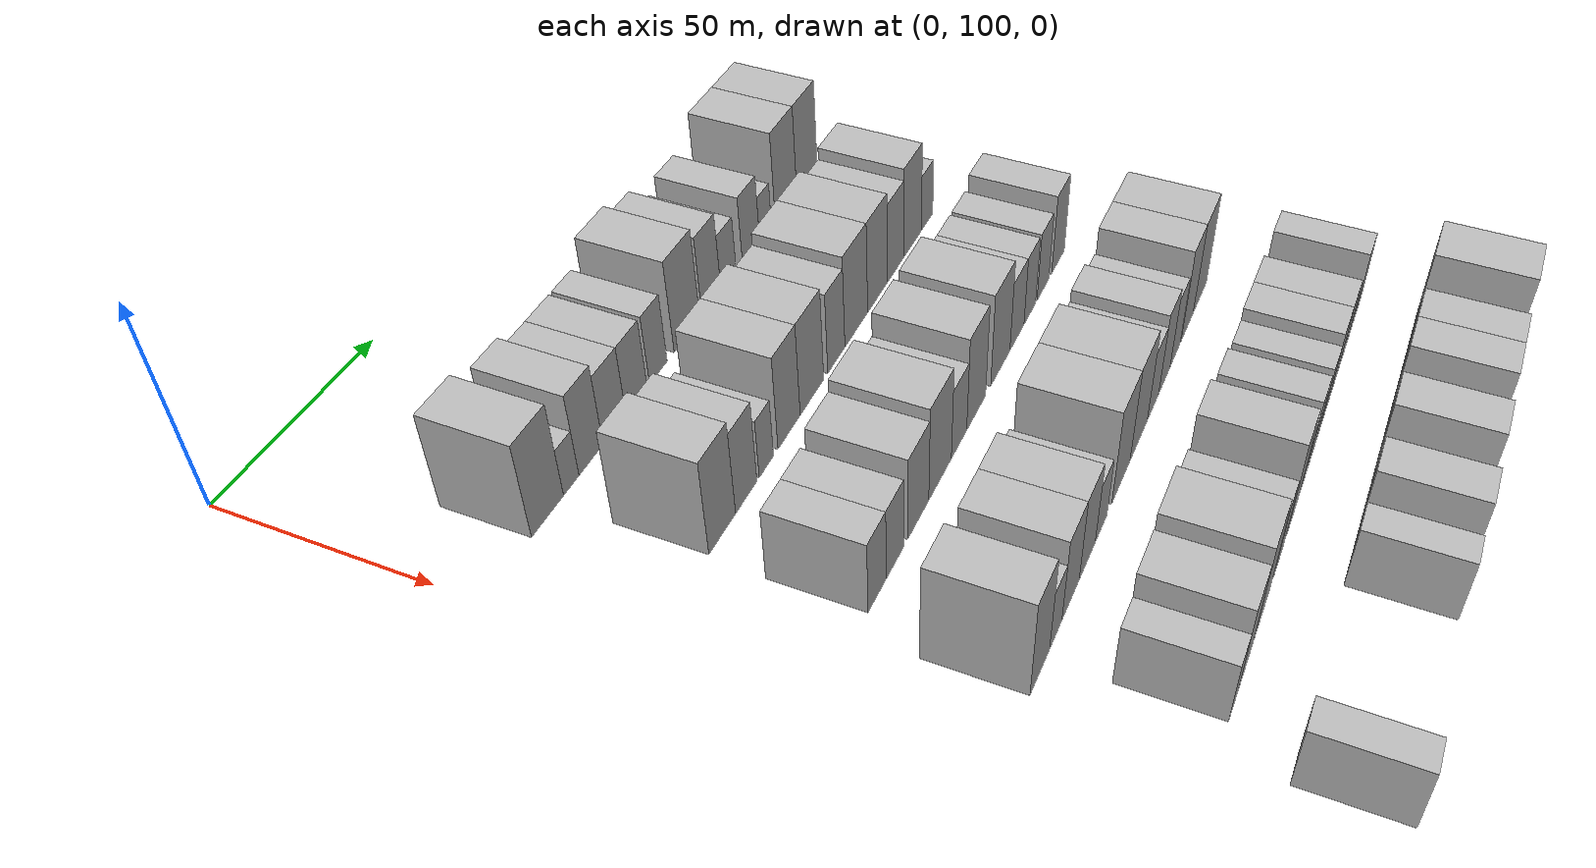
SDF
<sdf version="1.6">
 <world name="default">
  <model name="building_70">
   <static>1</static>
   <pose>50.0000 121.9575 0 0.000000 0.000000 0.000000</pose>
   <link name="link">
    <pose>0 0 12.00 0 0 0</pose>
    <collision name="collision"><geometry><box><size>20.0000 11.2036 24.0000</size></box></geometry></collision>
    <visual name="visual">
     <cast_shadows>0</cast_shadows>
     <geometry><box><size>20.0000 11.2036 24.0000</size></box></geometry>
     <material>
      <script>
       <uri>model://HANNAS_wall/materials/scripts</uri>
       <uri>model://HANNAS_wall/materials/textures</uri>
       <name>vrc/HANNAS_wall</name>
      </script>
     </material>
    </visual>
   </link>
  </model>
  <model name="building_71">
   <static>1</static>
   <pose>50.0000 130.3569 0 0.000000 0.000000 0.000000</pose>
   <link name="link">
    <pose>0 0 6.00 0 0 0</pose>
    <collision name="collision"><geometry><box><size>20.0000 5.5951 12.0000</size></box></geometry></collision>
    <visual name="visual">
     <cast_shadows>0</cast_shadows>
     <geometry><box><size>20.0000 5.5951 12.0000</size></box></geometry>
     <material>
      <script>
       <uri>model://HANNAS_wall/materials/scripts</uri>
       <uri>model://HANNAS_wall/materials/textures</uri>
       <name>vrc/HANNAS_wall</name>
      </script>
     </material>
    </visual>
   </link>
  </model>
  <model name="building_72">
   <static>1</static>
   <pose>50.0000 137.6327 0 0.000000 0.000000 0.000000</pose>
   <link name="link">
    <pose>0 0 10.50 0 0 0</pose>
    <collision name="collision"><geometry><box><size>20.0000 8.9564 21.0000</size></box></geometry></collision>
    <visual name="visual">
     <cast_shadows>0</cast_shadows>
     <geometry><box><size>20.0000 8.9564 21.0000</size></box></geometry>
     <material>
      <script>
       <uri>model://HANNAS_wall/materials/scripts</uri>
       <uri>model://HANNAS_wall/materials/textures</uri>
       <name>vrc/HANNAS_wall</name>
      </script>
     </material>
    </visual>
   </link>
  </model>
  <model name="building_73">
   <static>1</static>
   <pose>50.0000 146.5705 0 0.000000 0.000000 0.000000</pose>
   <link name="link">
    <pose>0 0 9.00 0 0 0</pose>
    <collision name="collision"><geometry><box><size>20.0000 8.9193 18.0000</size></box></geometry></collision>
    <visual name="visual">
     <cast_shadows>0</cast_shadows>
     <geometry><box><size>20.0000 8.9193 18.0000</size></box></geometry>
     <material>
      <script>
       <uri>model://HANNAS_wall/materials/scripts</uri>
       <uri>model://HANNAS_wall/materials/textures</uri>
       <name>vrc/HANNAS_wall</name>
      </script>
     </material>
    </visual>
   </link>
  </model>
  <model name="building_74">
   <static>1</static>
   <pose>50.0000 155.3008 0 0.000000 0.000000 0.000000</pose>
   <link name="link">
    <pose>0 0 9.00 0 0 0</pose>
    <collision name="collision"><geometry><box><size>20.0000 8.5412 18.0000</size></box></geometry></collision>
    <visual name="visual">
     <cast_shadows>0</cast_shadows>
     <geometry><box><size>20.0000 8.5412 18.0000</size></box></geometry>
     <material>
      <script>
       <uri>model://HANNAS_wall/materials/scripts</uri>
       <uri>model://HANNAS_wall/materials/textures</uri>
       <name>vrc/HANNAS_wall</name>
      </script>
     </material>
    </visual>
   </link>
  </model>
  <model name="building_75">
   <static>1</static>
   <pose>50.0000 164.2473 0 0.000000 0.000000 0.000000</pose>
   <link name="link">
    <pose>0 0 9.00 0 0 0</pose>
    <collision name="collision"><geometry><box><size>20.0000 7.3519 18.0000</size></box></geometry></collision>
    <visual name="visual">
     <cast_shadows>0</cast_shadows>
     <geometry><box><size>20.0000 7.3519 18.0000</size></box></geometry>
     <material>
      <script>
       <uri>model://HANNAS_wall/materials/scripts</uri>
       <uri>model://HANNAS_wall/materials/textures</uri>
       <name>vrc/HANNAS_wall</name>
      </script>
     </material>
    </visual>
   </link>
  </model>
  <model name="building_76">
   <static>1</static>
   <pose>50.0000 176.5852 0 0.000000 0.000000 0.000000</pose>
   <link name="link">
    <pose>0 0 12.00 0 0 0</pose>
    <collision name="collision"><geometry><box><size>20.0000 11.3239 24.0000</size></box></geometry></collision>
    <visual name="visual">
     <cast_shadows>0</cast_shadows>
     <geometry><box><size>20.0000 11.3239 24.0000</size></box></geometry>
     <material>
      <script>
       <uri>model://HANNAS_wall/materials/scripts</uri>
       <uri>model://HANNAS_wall/materials/textures</uri>
       <name>vrc/HANNAS_wall</name>
      </script>
     </material>
    </visual>
   </link>
  </model>
  <model name="building_77">
   <static>1</static>
   <pose>50.0000 187.6508 0 0.000000 0.000000 0.000000</pose>
   <link name="link">
    <pose>0 0 10.50 0 0 0</pose>
    <collision name="collision"><geometry><box><size>20.0000 8.8072 21.0000</size></box></geometry></collision>
    <visual name="visual">
     <cast_shadows>0</cast_shadows>
     <geometry><box><size>20.0000 8.8072 21.0000</size></box></geometry>
     <material>
      <script>
       <uri>model://HANNAS_wall/materials/scripts</uri>
       <uri>model://HANNAS_wall/materials/textures</uri>
       <name>vrc/HANNAS_wall</name>
      </script>
     </material>
    </visual>
   </link>
  </model>
  <model name="building_78">
   <static>1</static>
   <pose>50.0000 195.6597 0 0.000000 0.000000 0.000000</pose>
   <link name="link">
    <pose>0 0 7.50 0 0 0</pose>
    <collision name="collision"><geometry><box><size>20.0000 7.2107 15.0000</size></box></geometry></collision>
    <visual name="visual">
     <cast_shadows>0</cast_shadows>
     <geometry><box><size>20.0000 7.2107 15.0000</size></box></geometry>
     <material>
      <script>
       <uri>model://HANNAS_wall/materials/scripts</uri>
       <uri>model://HANNAS_wall/materials/textures</uri>
       <name>vrc/HANNAS_wall</name>
      </script>
     </material>
    </visual>
   </link>
  </model>
  <model name="building_79">
   <static>1</static>
   <pose>50.0000 206.5224 0 0.000000 0.000000 0.000000</pose>
   <link name="link">
    <pose>0 0 9.00 0 0 0</pose>
    <collision name="collision"><geometry><box><size>20.0000 8.5146 18.0000</size></box></geometry></collision>
    <visual name="visual">
     <cast_shadows>0</cast_shadows>
     <geometry><box><size>20.0000 8.5146 18.0000</size></box></geometry>
     <material>
      <script>
       <uri>model://HANNAS_wall/materials/scripts</uri>
       <uri>model://HANNAS_wall/materials/textures</uri>
       <name>vrc/HANNAS_wall</name>
      </script>
     </material>
    </visual>
   </link>
  </model>
  <model name="building_80">
   <static>1</static>
   <pose>50.0000 213.7681 0 0.000000 0.000000 0.000000</pose>
   <link name="link">
    <pose>0 0 6.00 0 0 0</pose>
    <collision name="collision"><geometry><box><size>20.0000 5.9770 12.0000</size></box></geometry></collision>
    <visual name="visual">
     <cast_shadows>0</cast_shadows>
     <geometry><box><size>20.0000 5.9770 12.0000</size></box></geometry>
     <material>
      <script>
       <uri>model://HANNAS_wall/materials/scripts</uri>
       <uri>model://HANNAS_wall/materials/textures</uri>
       <name>vrc/HANNAS_wall</name>
      </script>
     </material>
    </visual>
   </link>
  </model>
  <model name="building_81">
   <static>1</static>
   <pose>50.0000 224.4582 0 0.000000 0.000000 0.000000</pose>
   <link name="link">
    <pose>0 0 12.00 0 0 0</pose>
    <collision name="collision"><geometry><box><size>20.0000 11.4031 24.0000</size></box></geometry></collision>
    <visual name="visual">
     <cast_shadows>0</cast_shadows>
     <geometry><box><size>20.0000 11.4031 24.0000</size></box></geometry>
     <material>
      <script>
       <uri>model://HANNAS_wall/materials/scripts</uri>
       <uri>model://HANNAS_wall/materials/textures</uri>
       <name>vrc/HANNAS_wall</name>
      </script>
     </material>
    </visual>
   </link>
  </model>
  <model name="building_82">
   <static>1</static>
   <pose>50.0000 235.7832 0 0.000000 0.000000 0.000000</pose>
   <link name="link">
    <pose>0 0 12.00 0 0 0</pose>
    <collision name="collision"><geometry><box><size>20.0000 11.2469 24.0000</size></box></geometry></collision>
    <visual name="visual">
     <cast_shadows>0</cast_shadows>
     <geometry><box><size>20.0000 11.2469 24.0000</size></box></geometry>
     <material>
      <script>
       <uri>model://HANNAS_wall/materials/scripts</uri>
       <uri>model://HANNAS_wall/materials/textures</uri>
       <name>vrc/HANNAS_wall</name>
      </script>
     </material>
    </visual>
   </link>
  </model>
  <model name="building_189">
   <static>1</static>
   <pose>82.0000 130.6243 0 0.000000 0.000000 0.000000</pose>
   <link name="link">
    <pose>0 0 12.00 0 0 0</pose>
    <collision name="collision"><geometry><box><size>20.0000 10.7562 24.0000</size></box></geometry></collision>
    <visual name="visual">
     <cast_shadows>0</cast_shadows>
     <geometry><box><size>20.0000 10.7562 24.0000</size></box></geometry>
     <material>
      <script>
       <uri>model://HANNAS_wall/materials/scripts</uri>
       <uri>model://HANNAS_wall/materials/textures</uri>
       <name>vrc/HANNAS_wall</name>
      </script>
     </material>
    </visual>
   </link>
  </model>
  <model name="building_190">
   <static>1</static>
   <pose>82.0000 140.4463 0 0.000000 0.000000 0.000000</pose>
   <link name="link">
    <pose>0 0 10.50 0 0 0</pose>
    <collision name="collision"><geometry><box><size>20.0000 8.8877 21.0000</size></box></geometry></collision>
    <visual name="visual">
     <cast_shadows>0</cast_shadows>
     <geometry><box><size>20.0000 8.8877 21.0000</size></box></geometry>
     <material>
      <script>
       <uri>model://HANNAS_wall/materials/scripts</uri>
       <uri>model://HANNAS_wall/materials/textures</uri>
       <name>vrc/HANNAS_wall</name>
      </script>
     </material>
    </visual>
   </link>
  </model>
  <model name="building_191">
   <static>1</static>
   <pose>82.0000 148.9776 0 0.000000 0.000000 0.000000</pose>
   <link name="link">
    <pose>0 0 7.50 0 0 0</pose>
    <collision name="collision"><geometry><box><size>20.0000 6.1750 15.0000</size></box></geometry></collision>
    <visual name="visual">
     <cast_shadows>0</cast_shadows>
     <geometry><box><size>20.0000 6.1750 15.0000</size></box></geometry>
     <material>
      <script>
       <uri>model://HANNAS_wall/materials/scripts</uri>
       <uri>model://HANNAS_wall/materials/textures</uri>
       <name>vrc/HANNAS_wall</name>
      </script>
     </material>
    </visual>
   </link>
  </model>
  <model name="building_192">
   <static>1</static>
   <pose>82.0000 159.1167 0 0.000000 0.000000 0.000000</pose>
   <link name="link">
    <pose>0 0 12.00 0 0 0</pose>
    <collision name="collision"><geometry><box><size>20.0000 10.1032 24.0000</size></box></geometry></collision>
    <visual name="visual">
     <cast_shadows>0</cast_shadows>
     <geometry><box><size>20.0000 10.1032 24.0000</size></box></geometry>
     <material>
      <script>
       <uri>model://HANNAS_wall/materials/scripts</uri>
       <uri>model://HANNAS_wall/materials/textures</uri>
       <name>vrc/HANNAS_wall</name>
      </script>
     </material>
    </visual>
   </link>
  </model>
  <model name="building_193">
   <static>1</static>
   <pose>82.0000 169.7505 0 0.000000 0.000000 0.000000</pose>
   <link name="link">
    <pose>0 0 12.00 0 0 0</pose>
    <collision name="collision"><geometry><box><size>20.0000 11.1643 24.0000</size></box></geometry></collision>
    <visual name="visual">
     <cast_shadows>0</cast_shadows>
     <geometry><box><size>20.0000 11.1643 24.0000</size></box></geometry>
     <material>
      <script>
       <uri>model://HANNAS_wall/materials/scripts</uri>
       <uri>model://HANNAS_wall/materials/textures</uri>
       <name>vrc/HANNAS_wall</name>
      </script>
     </material>
    </visual>
   </link>
  </model>
  <model name="building_194">
   <static>1</static>
   <pose>82.0000 181.6299 0 0.000000 0.000000 0.000000</pose>
   <link name="link">
    <pose>0 0 10.50 0 0 0</pose>
    <collision name="collision"><geometry><box><size>20.0000 8.5944 21.0000</size></box></geometry></collision>
    <visual name="visual">
     <cast_shadows>0</cast_shadows>
     <geometry><box><size>20.0000 8.5944 21.0000</size></box></geometry>
     <material>
      <script>
       <uri>model://HANNAS_wall/materials/scripts</uri>
       <uri>model://HANNAS_wall/materials/textures</uri>
       <name>vrc/HANNAS_wall</name>
      </script>
     </material>
    </visual>
   </link>
  </model>
  <model name="building_195">
   <static>1</static>
   <pose>82.0000 191.8626 0 0.000000 0.000000 0.000000</pose>
   <link name="link">
    <pose>0 0 12.00 0 0 0</pose>
    <collision name="collision"><geometry><box><size>20.0000 11.8711 24.0000</size></box></geometry></collision>
    <visual name="visual">
     <cast_shadows>0</cast_shadows>
     <geometry><box><size>20.0000 11.8711 24.0000</size></box></geometry>
     <material>
      <script>
       <uri>model://HANNAS_wall/materials/scripts</uri>
       <uri>model://HANNAS_wall/materials/textures</uri>
       <name>vrc/HANNAS_wall</name>
      </script>
     </material>
    </visual>
   </link>
  </model>
  <model name="building_196">
   <static>1</static>
   <pose>82.0000 203.2044 0 0.000000 0.000000 0.000000</pose>
   <link name="link">
    <pose>0 0 12.00 0 0 0</pose>
    <collision name="collision"><geometry><box><size>20.0000 10.8124 24.0000</size></box></geometry></collision>
    <visual name="visual">
     <cast_shadows>0</cast_shadows>
     <geometry><box><size>20.0000 10.8124 24.0000</size></box></geometry>
     <material>
      <script>
       <uri>model://HANNAS_wall/materials/scripts</uri>
       <uri>model://HANNAS_wall/materials/textures</uri>
       <name>vrc/HANNAS_wall</name>
      </script>
     </material>
    </visual>
   </link>
  </model>
  <model name="building_197">
   <static>1</static>
   <pose>82.0000 213.2472 0 0.000000 0.000000 0.000000</pose>
   <link name="link">
    <pose>0 0 10.50 0 0 0</pose>
    <collision name="collision"><geometry><box><size>20.0000 9.2732 21.0000</size></box></geometry></collision>
    <visual name="visual">
     <cast_shadows>0</cast_shadows>
     <geometry><box><size>20.0000 9.2732 21.0000</size></box></geometry>
     <material>
      <script>
       <uri>model://HANNAS_wall/materials/scripts</uri>
       <uri>model://HANNAS_wall/materials/textures</uri>
       <name>vrc/HANNAS_wall</name>
      </script>
     </material>
    </visual>
   </link>
  </model>
  <model name="building_198">
   <static>1</static>
   <pose>82.0000 223.0522 0 0.000000 0.000000 0.000000</pose>
   <link name="link">
    <pose>0 0 12.00 0 0 0</pose>
    <collision name="collision"><geometry><box><size>20.0000 10.3369 24.0000</size></box></geometry></collision>
    <visual name="visual">
     <cast_shadows>0</cast_shadows>
     <geometry><box><size>20.0000 10.3369 24.0000</size></box></geometry>
     <material>
      <script>
       <uri>model://HANNAS_wall/materials/scripts</uri>
       <uri>model://HANNAS_wall/materials/textures</uri>
       <name>vrc/HANNAS_wall</name>
      </script>
     </material>
    </visual>
   </link>
  </model>
  <model name="building_199">
   <static>1</static>
   <pose>82.0000 231.6708 0 0.000000 0.000000 0.000000</pose>
   <link name="link">
    <pose>0 0 7.50 0 0 0</pose>
    <collision name="collision"><geometry><box><size>20.0000 6.9004 15.0000</size></box></geometry></collision>
    <visual name="visual">
     <cast_shadows>0</cast_shadows>
     <geometry><box><size>20.0000 6.9004 15.0000</size></box></geometry>
     <material>
      <script>
       <uri>model://HANNAS_wall/materials/scripts</uri>
       <uri>model://HANNAS_wall/materials/textures</uri>
       <name>vrc/HANNAS_wall</name>
      </script>
     </material>
    </visual>
   </link>
  </model>
  <model name="building_308">
   <static>1</static>
   <pose>114.0000 128.3256 0 0.000000 0.000000 0.000000</pose>
   <link name="link">
    <pose>0 0 9.00 0 0 0</pose>
    <collision name="collision"><geometry><box><size>20.0000 8.1942 18.0000</size></box></geometry></collision>
    <visual name="visual">
     <cast_shadows>0</cast_shadows>
     <geometry><box><size>20.0000 8.1942 18.0000</size></box></geometry>
     <material>
      <script>
       <uri>model://HANNAS_wall/materials/scripts</uri>
       <uri>model://HANNAS_wall/materials/textures</uri>
       <name>vrc/HANNAS_wall</name>
      </script>
     </material>
    </visual>
   </link>
  </model>
  <model name="building_309">
   <static>1</static>
   <pose>114.0000 136.4928 0 0.000000 0.000000 0.000000</pose>
   <link name="link">
    <pose>0 0 9.00 0 0 0</pose>
    <collision name="collision"><geometry><box><size>20.0000 8.1402 18.0000</size></box></geometry></collision>
    <visual name="visual">
     <cast_shadows>0</cast_shadows>
     <geometry><box><size>20.0000 8.1402 18.0000</size></box></geometry>
     <material>
      <script>
       <uri>model://HANNAS_wall/materials/scripts</uri>
       <uri>model://HANNAS_wall/materials/textures</uri>
       <name>vrc/HANNAS_wall</name>
      </script>
     </material>
    </visual>
   </link>
  </model>
  <model name="building_310">
   <static>1</static>
   <pose>114.0000 147.7232 0 0.000000 0.000000 0.000000</pose>
   <link name="link">
    <pose>0 0 10.50 0 0 0</pose>
    <collision name="collision"><geometry><box><size>20.0000 10.3205 21.0000</size></box></geometry></collision>
    <visual name="visual">
     <cast_shadows>0</cast_shadows>
     <geometry><box><size>20.0000 10.3205 21.0000</size></box></geometry>
     <material>
      <script>
       <uri>model://HANNAS_wall/materials/scripts</uri>
       <uri>model://HANNAS_wall/materials/textures</uri>
       <name>vrc/HANNAS_wall</name>
      </script>
     </material>
    </visual>
   </link>
  </model>
  <model name="building_311">
   <static>1</static>
   <pose>114.0000 158.7379 0 0.000000 0.000000 0.000000</pose>
   <link name="link">
    <pose>0 0 12.00 0 0 0</pose>
    <collision name="collision"><geometry><box><size>20.0000 11.7090 24.0000</size></box></geometry></collision>
    <visual name="visual">
     <cast_shadows>0</cast_shadows>
     <geometry><box><size>20.0000 11.7090 24.0000</size></box></geometry>
     <material>
      <script>
       <uri>model://HANNAS_wall/materials/scripts</uri>
       <uri>model://HANNAS_wall/materials/textures</uri>
       <name>vrc/HANNAS_wall</name>
      </script>
     </material>
    </visual>
   </link>
  </model>
  <model name="building_312">
   <static>1</static>
   <pose>114.0000 168.7521 0 0.000000 0.000000 0.000000</pose>
   <link name="link">
    <pose>0 0 9.00 0 0 0</pose>
    <collision name="collision"><geometry><box><size>20.0000 8.3194 18.0000</size></box></geometry></collision>
    <visual name="visual">
     <cast_shadows>0</cast_shadows>
     <geometry><box><size>20.0000 8.3194 18.0000</size></box></geometry>
     <material>
      <script>
       <uri>model://HANNAS_wall/materials/scripts</uri>
       <uri>model://HANNAS_wall/materials/textures</uri>
       <name>vrc/HANNAS_wall</name>
      </script>
     </material>
    </visual>
   </link>
  </model>
  <model name="building_313">
   <static>1</static>
   <pose>114.0000 178.2440 0 0.000000 0.000000 0.000000</pose>
   <link name="link">
    <pose>0 0 12.00 0 0 0</pose>
    <collision name="collision"><geometry><box><size>20.0000 10.6644 24.0000</size></box></geometry></collision>
    <visual name="visual">
     <cast_shadows>0</cast_shadows>
     <geometry><box><size>20.0000 10.6644 24.0000</size></box></geometry>
     <material>
      <script>
       <uri>model://HANNAS_wall/materials/scripts</uri>
       <uri>model://HANNAS_wall/materials/textures</uri>
       <name>vrc/HANNAS_wall</name>
      </script>
     </material>
    </visual>
   </link>
  </model>
  <model name="building_314">
   <static>1</static>
   <pose>114.0000 192.3280 0 0.000000 0.000000 0.000000</pose>
   <link name="link">
    <pose>0 0 12.00 0 0 0</pose>
    <collision name="collision"><geometry><box><size>20.0000 11.5035 24.0000</size></box></geometry></collision>
    <visual name="visual">
     <cast_shadows>0</cast_shadows>
     <geometry><box><size>20.0000 11.5035 24.0000</size></box></geometry>
     <material>
      <script>
       <uri>model://HANNAS_wall/materials/scripts</uri>
       <uri>model://HANNAS_wall/materials/textures</uri>
       <name>vrc/HANNAS_wall</name>
      </script>
     </material>
    </visual>
   </link>
  </model>
  <model name="building_315">
   <static>1</static>
   <pose>114.0000 202.4634 0 0.000000 0.000000 0.000000</pose>
   <link name="link">
    <pose>0 0 9.00 0 0 0</pose>
    <collision name="collision"><geometry><box><size>20.0000 8.7674 18.0000</size></box></geometry></collision>
    <visual name="visual">
     <cast_shadows>0</cast_shadows>
     <geometry><box><size>20.0000 8.7674 18.0000</size></box></geometry>
     <material>
      <script>
       <uri>model://HANNAS_wall/materials/scripts</uri>
       <uri>model://HANNAS_wall/materials/textures</uri>
       <name>vrc/HANNAS_wall</name>
      </script>
     </material>
    </visual>
   </link>
  </model>
  <model name="building_316">
   <static>1</static>
   <pose>114.0000 210.5707 0 0.000000 0.000000 0.000000</pose>
   <link name="link">
    <pose>0 0 9.00 0 0 0</pose>
    <collision name="collision"><geometry><box><size>20.0000 7.4473 18.0000</size></box></geometry></collision>
    <visual name="visual">
     <cast_shadows>0</cast_shadows>
     <geometry><box><size>20.0000 7.4473 18.0000</size></box></geometry>
     <material>
      <script>
       <uri>model://HANNAS_wall/materials/scripts</uri>
       <uri>model://HANNAS_wall/materials/textures</uri>
       <name>vrc/HANNAS_wall</name>
      </script>
     </material>
    </visual>
   </link>
  </model>
  <model name="building_317">
   <static>1</static>
   <pose>114.0000 219.2162 0 0.000000 0.000000 0.000000</pose>
   <link name="link">
    <pose>0 0 9.00 0 0 0</pose>
    <collision name="collision"><geometry><box><size>20.0000 7.8437 18.0000</size></box></geometry></collision>
    <visual name="visual">
     <cast_shadows>0</cast_shadows>
     <geometry><box><size>20.0000 7.8437 18.0000</size></box></geometry>
     <material>
      <script>
       <uri>model://HANNAS_wall/materials/scripts</uri>
       <uri>model://HANNAS_wall/materials/textures</uri>
       <name>vrc/HANNAS_wall</name>
      </script>
     </material>
    </visual>
   </link>
  </model>
  <model name="building_318">
   <static>1</static>
   <pose>114.0000 229.4955 0 0.000000 0.000000 0.000000</pose>
   <link name="link">
    <pose>0 0 10.50 0 0 0</pose>
    <collision name="collision"><geometry><box><size>20.0000 8.7149 21.0000</size></box></geometry></collision>
    <visual name="visual">
     <cast_shadows>0</cast_shadows>
     <geometry><box><size>20.0000 8.7149 21.0000</size></box></geometry>
     <material>
      <script>
       <uri>model://HANNAS_wall/materials/scripts</uri>
       <uri>model://HANNAS_wall/materials/textures</uri>
       <name>vrc/HANNAS_wall</name>
      </script>
     </material>
    </visual>
   </link>
  </model>
  <model name="building_422">
   <static>1</static>
   <pose>146.0000 123.7779 0 0.000000 0.000000 0.000000</pose>
   <link name="link">
    <pose>0 0 12.00 0 0 0</pose>
    <collision name="collision"><geometry><box><size>20.0000 10.2554 24.0000</size></box></geometry></collision>
    <visual name="visual">
     <cast_shadows>0</cast_shadows>
     <geometry><box><size>20.0000 10.2554 24.0000</size></box></geometry>
     <material>
      <script>
       <uri>model://HANNAS_wall/materials/scripts</uri>
       <uri>model://HANNAS_wall/materials/textures</uri>
       <name>vrc/HANNAS_wall</name>
      </script>
     </material>
    </visual>
   </link>
  </model>
  <model name="building_423">
   <static>1</static>
   <pose>146.0000 132.2460 0 0.000000 0.000000 0.000000</pose>
   <link name="link">
    <pose>0 0 7.50 0 0 0</pose>
    <collision name="collision"><geometry><box><size>20.0000 6.6808 15.0000</size></box></geometry></collision>
    <visual name="visual">
     <cast_shadows>0</cast_shadows>
     <geometry><box><size>20.0000 6.6808 15.0000</size></box></geometry>
     <material>
      <script>
       <uri>model://HANNAS_wall/materials/scripts</uri>
       <uri>model://HANNAS_wall/materials/textures</uri>
       <name>vrc/HANNAS_wall</name>
      </script>
     </material>
    </visual>
   </link>
  </model>
  <model name="building_424">
   <static>1</static>
   <pose>146.0000 140.5084 0 0.000000 0.000000 0.000000</pose>
   <link name="link">
    <pose>0 0 10.50 0 0 0</pose>
    <collision name="collision"><geometry><box><size>20.0000 9.8438 21.0000</size></box></geometry></collision>
    <visual name="visual">
     <cast_shadows>0</cast_shadows>
     <geometry><box><size>20.0000 9.8438 21.0000</size></box></geometry>
     <material>
      <script>
       <uri>model://HANNAS_wall/materials/scripts</uri>
       <uri>model://HANNAS_wall/materials/textures</uri>
       <name>vrc/HANNAS_wall</name>
      </script>
     </material>
    </visual>
   </link>
  </model>
  <model name="building_425">
   <static>1</static>
   <pose>146.0000 150.2003 0 0.000000 0.000000 0.000000</pose>
   <link name="link">
    <pose>0 0 10.50 0 0 0</pose>
    <collision name="collision"><geometry><box><size>20.0000 9.5401 21.0000</size></box></geometry></collision>
    <visual name="visual">
     <cast_shadows>0</cast_shadows>
     <geometry><box><size>20.0000 9.5401 21.0000</size></box></geometry>
     <material>
      <script>
       <uri>model://HANNAS_wall/materials/scripts</uri>
       <uri>model://HANNAS_wall/materials/textures</uri>
       <name>vrc/HANNAS_wall</name>
      </script>
     </material>
    </visual>
   </link>
  </model>
  <model name="building_426">
   <static>1</static>
   <pose>146.0000 158.6133 0 0.000000 0.000000 0.000000</pose>
   <link name="link">
    <pose>0 0 7.50 0 0 0</pose>
    <collision name="collision"><geometry><box><size>20.0000 7.2858 15.0000</size></box></geometry></collision>
    <visual name="visual">
     <cast_shadows>0</cast_shadows>
     <geometry><box><size>20.0000 7.2858 15.0000</size></box></geometry>
     <material>
      <script>
       <uri>model://HANNAS_wall/materials/scripts</uri>
       <uri>model://HANNAS_wall/materials/textures</uri>
       <name>vrc/HANNAS_wall</name>
      </script>
     </material>
    </visual>
   </link>
  </model>
  <model name="building_427">
   <static>1</static>
   <pose>146.0000 171.2184 0 0.000000 0.000000 0.000000</pose>
   <link name="link">
    <pose>0 0 12.00 0 0 0</pose>
    <collision name="collision"><geometry><box><size>20.0000 11.9243 24.0000</size></box></geometry></collision>
    <visual name="visual">
     <cast_shadows>0</cast_shadows>
     <geometry><box><size>20.0000 11.9243 24.0000</size></box></geometry>
     <material>
      <script>
       <uri>model://HANNAS_wall/materials/scripts</uri>
       <uri>model://HANNAS_wall/materials/textures</uri>
       <name>vrc/HANNAS_wall</name>
      </script>
     </material>
    </visual>
   </link>
  </model>
  <model name="building_428">
   <static>1</static>
   <pose>146.0000 183.1458 0 0.000000 0.000000 0.000000</pose>
   <link name="link">
    <pose>0 0 12.00 0 0 0</pose>
    <collision name="collision"><geometry><box><size>20.0000 11.9305 24.0000</size></box></geometry></collision>
    <visual name="visual">
     <cast_shadows>0</cast_shadows>
     <geometry><box><size>20.0000 11.9305 24.0000</size></box></geometry>
     <material>
      <script>
       <uri>model://HANNAS_wall/materials/scripts</uri>
       <uri>model://HANNAS_wall/materials/textures</uri>
       <name>vrc/HANNAS_wall</name>
      </script>
     </material>
    </visual>
   </link>
  </model>
  <model name="building_429">
   <static>1</static>
   <pose>146.0000 193.2126 0 0.000000 0.000000 0.000000</pose>
   <link name="link">
    <pose>0 0 9.00 0 0 0</pose>
    <collision name="collision"><geometry><box><size>20.0000 8.2032 18.0000</size></box></geometry></collision>
    <visual name="visual">
     <cast_shadows>0</cast_shadows>
     <geometry><box><size>20.0000 8.2032 18.0000</size></box></geometry>
     <material>
      <script>
       <uri>model://HANNAS_wall/materials/scripts</uri>
       <uri>model://HANNAS_wall/materials/textures</uri>
       <name>vrc/HANNAS_wall</name>
      </script>
     </material>
    </visual>
   </link>
  </model>
  <model name="building_430">
   <static>1</static>
   <pose>146.0000 201.5848 0 0.000000 0.000000 0.000000</pose>
   <link name="link">
    <pose>0 0 10.50 0 0 0</pose>
    <collision name="collision"><geometry><box><size>20.0000 8.5411 21.0000</size></box></geometry></collision>
    <visual name="visual">
     <cast_shadows>0</cast_shadows>
     <geometry><box><size>20.0000 8.5411 21.0000</size></box></geometry>
     <material>
      <script>
       <uri>model://HANNAS_wall/materials/scripts</uri>
       <uri>model://HANNAS_wall/materials/textures</uri>
       <name>vrc/HANNAS_wall</name>
      </script>
     </material>
    </visual>
   </link>
  </model>
  <model name="building_431">
   <static>1</static>
   <pose>146.0000 209.6631 0 0.000000 0.000000 0.000000</pose>
   <link name="link">
    <pose>0 0 9.00 0 0 0</pose>
    <collision name="collision"><geometry><box><size>20.0000 7.6157 18.0000</size></box></geometry></collision>
    <visual name="visual">
     <cast_shadows>0</cast_shadows>
     <geometry><box><size>20.0000 7.6157 18.0000</size></box></geometry>
     <material>
      <script>
       <uri>model://HANNAS_wall/materials/scripts</uri>
       <uri>model://HANNAS_wall/materials/textures</uri>
       <name>vrc/HANNAS_wall</name>
      </script>
     </material>
    </visual>
   </link>
  </model>
  <model name="building_432">
   <static>1</static>
   <pose>146.0000 219.2934 0 0.000000 0.000000 0.000000</pose>
   <link name="link">
    <pose>0 0 12.00 0 0 0</pose>
    <collision name="collision"><geometry><box><size>20.0000 9.6448 24.0000</size></box></geometry></collision>
    <visual name="visual">
     <cast_shadows>0</cast_shadows>
     <geometry><box><size>20.0000 9.6448 24.0000</size></box></geometry>
     <material>
      <script>
       <uri>model://HANNAS_wall/materials/scripts</uri>
       <uri>model://HANNAS_wall/materials/textures</uri>
       <name>vrc/HANNAS_wall</name>
      </script>
     </material>
    </visual>
   </link>
  </model>
  <model name="building_433">
   <static>1</static>
   <pose>146.0000 229.7025 0 0.000000 0.000000 0.000000</pose>
   <link name="link">
    <pose>0 0 12.00 0 0 0</pose>
    <collision name="collision"><geometry><box><size>20.0000 11.1735 24.0000</size></box></geometry></collision>
    <visual name="visual">
     <cast_shadows>0</cast_shadows>
     <geometry><box><size>20.0000 11.1735 24.0000</size></box></geometry>
     <material>
      <script>
       <uri>model://HANNAS_wall/materials/scripts</uri>
       <uri>model://HANNAS_wall/materials/textures</uri>
       <name>vrc/HANNAS_wall</name>
      </script>
     </material>
    </visual>
   </link>
  </model>
  <model name="building_540">
   <static>1</static>
   <pose>178.0000 129.8848 0 0.000000 0.000000 0.000000</pose>
   <link name="link">
    <pose>0 0 7.50 0 0 0</pose>
    <collision name="collision"><geometry><box><size>20.0000 6.9626 15.0000</size></box></geometry></collision>
    <visual name="visual">
     <cast_shadows>0</cast_shadows>
     <geometry><box><size>20.0000 6.9626 15.0000</size></box></geometry>
     <material>
      <script>
       <uri>model://HANNAS_wall/materials/scripts</uri>
       <uri>model://HANNAS_wall/materials/textures</uri>
       <name>vrc/HANNAS_wall</name>
      </script>
     </material>
    </visual>
   </link>
  </model>
  <model name="building_541">
   <static>1</static>
   <pose>178.0000 138.4891 0 0.000000 0.000000 0.000000</pose>
   <link name="link">
    <pose>0 0 10.50 0 0 0</pose>
    <collision name="collision"><geometry><box><size>20.0000 10.2460 21.0000</size></box></geometry></collision>
    <visual name="visual">
     <cast_shadows>0</cast_shadows>
     <geometry><box><size>20.0000 10.2460 21.0000</size></box></geometry>
     <material>
      <script>
       <uri>model://HANNAS_wall/materials/scripts</uri>
       <uri>model://HANNAS_wall/materials/textures</uri>
       <name>vrc/HANNAS_wall</name>
      </script>
     </material>
    </visual>
   </link>
  </model>
  <model name="building_542">
   <static>1</static>
   <pose>178.0000 150.5064 0 0.000000 0.000000 0.000000</pose>
   <link name="link">
    <pose>0 0 12.00 0 0 0</pose>
    <collision name="collision"><geometry><box><size>20.0000 11.7886 24.0000</size></box></geometry></collision>
    <visual name="visual">
     <cast_shadows>0</cast_shadows>
     <geometry><box><size>20.0000 11.7886 24.0000</size></box></geometry>
     <material>
      <script>
       <uri>model://HANNAS_wall/materials/scripts</uri>
       <uri>model://HANNAS_wall/materials/textures</uri>
       <name>vrc/HANNAS_wall</name>
      </script>
     </material>
    </visual>
   </link>
  </model>
  <model name="building_543">
   <static>1</static>
   <pose>178.0000 163.1862 0 0.000000 0.000000 0.000000</pose>
   <link name="link">
    <pose>0 0 9.00 0 0 0</pose>
    <collision name="collision"><geometry><box><size>20.0000 7.5711 18.0000</size></box></geometry></collision>
    <visual name="visual">
     <cast_shadows>0</cast_shadows>
     <geometry><box><size>20.0000 7.5711 18.0000</size></box></geometry>
     <material>
      <script>
       <uri>model://HANNAS_wall/materials/scripts</uri>
       <uri>model://HANNAS_wall/materials/textures</uri>
       <name>vrc/HANNAS_wall</name>
      </script>
     </material>
    </visual>
   </link>
  </model>
  <model name="building_544">
   <static>1</static>
   <pose>178.0000 174.8491 0 0.000000 0.000000 0.000000</pose>
   <link name="link">
    <pose>0 0 12.00 0 0 0</pose>
    <collision name="collision"><geometry><box><size>20.0000 9.7545 24.0000</size></box></geometry></collision>
    <visual name="visual">
     <cast_shadows>0</cast_shadows>
     <geometry><box><size>20.0000 9.7545 24.0000</size></box></geometry>
     <material>
      <script>
       <uri>model://HANNAS_wall/materials/scripts</uri>
       <uri>model://HANNAS_wall/materials/textures</uri>
       <name>vrc/HANNAS_wall</name>
      </script>
     </material>
    </visual>
   </link>
  </model>
  <model name="building_545">
   <static>1</static>
   <pose>178.0000 184.9444 0 0.000000 0.000000 0.000000</pose>
   <link name="link">
    <pose>0 0 7.50 0 0 0</pose>
    <collision name="collision"><geometry><box><size>20.0000 6.4360 15.0000</size></box></geometry></collision>
    <visual name="visual">
     <cast_shadows>0</cast_shadows>
     <geometry><box><size>20.0000 6.4360 15.0000</size></box></geometry>
     <material>
      <script>
       <uri>model://HANNAS_wall/materials/scripts</uri>
       <uri>model://HANNAS_wall/materials/textures</uri>
       <name>vrc/HANNAS_wall</name>
      </script>
     </material>
    </visual>
   </link>
  </model>
  <model name="building_546">
   <static>1</static>
   <pose>178.0000 192.0476 0 0.000000 0.000000 0.000000</pose>
   <link name="link">
    <pose>0 0 9.00 0 0 0</pose>
    <collision name="collision"><geometry><box><size>20.0000 7.7705 18.0000</size></box></geometry></collision>
    <visual name="visual">
     <cast_shadows>0</cast_shadows>
     <geometry><box><size>20.0000 7.7705 18.0000</size></box></geometry>
     <material>
      <script>
       <uri>model://HANNAS_wall/materials/scripts</uri>
       <uri>model://HANNAS_wall/materials/textures</uri>
       <name>vrc/HANNAS_wall</name>
      </script>
     </material>
    </visual>
   </link>
  </model>
  <model name="building_547">
   <static>1</static>
   <pose>178.0000 198.5715 0 0.000000 0.000000 0.000000</pose>
   <link name="link">
    <pose>0 0 6.00 0 0 0</pose>
    <collision name="collision"><geometry><box><size>20.0000 5.2771 12.0000</size></box></geometry></collision>
    <visual name="visual">
     <cast_shadows>0</cast_shadows>
     <geometry><box><size>20.0000 5.2771 12.0000</size></box></geometry>
     <material>
      <script>
       <uri>model://HANNAS_wall/materials/scripts</uri>
       <uri>model://HANNAS_wall/materials/textures</uri>
       <name>vrc/HANNAS_wall</name>
      </script>
     </material>
    </visual>
   </link>
  </model>
  <model name="building_548">
   <static>1</static>
   <pose>178.0000 204.8403 0 0.000000 0.000000 0.000000</pose>
   <link name="link">
    <pose>0 0 7.50 0 0 0</pose>
    <collision name="collision"><geometry><box><size>20.0000 7.2606 15.0000</size></box></geometry></collision>
    <visual name="visual">
     <cast_shadows>0</cast_shadows>
     <geometry><box><size>20.0000 7.2606 15.0000</size></box></geometry>
     <material>
      <script>
       <uri>model://HANNAS_wall/materials/scripts</uri>
       <uri>model://HANNAS_wall/materials/textures</uri>
       <name>vrc/HANNAS_wall</name>
      </script>
     </material>
    </visual>
   </link>
  </model>
  <model name="building_549">
   <static>1</static>
   <pose>178.0000 212.8918 0 0.000000 0.000000 0.000000</pose>
   <link name="link">
    <pose>0 0 9.00 0 0 0</pose>
    <collision name="collision"><geometry><box><size>20.0000 8.8424 18.0000</size></box></geometry></collision>
    <visual name="visual">
     <cast_shadows>0</cast_shadows>
     <geometry><box><size>20.0000 8.8424 18.0000</size></box></geometry>
     <material>
      <script>
       <uri>model://HANNAS_wall/materials/scripts</uri>
       <uri>model://HANNAS_wall/materials/textures</uri>
       <name>vrc/HANNAS_wall</name>
      </script>
     </material>
    </visual>
   </link>
  </model>
  <model name="building_550">
   <static>1</static>
   <pose>178.0000 221.7622 0 0.000000 0.000000 0.000000</pose>
   <link name="link">
    <pose>0 0 9.00 0 0 0</pose>
    <collision name="collision"><geometry><box><size>20.0000 8.8983 18.0000</size></box></geometry></collision>
    <visual name="visual">
     <cast_shadows>0</cast_shadows>
     <geometry><box><size>20.0000 8.8983 18.0000</size></box></geometry>
     <material>
      <script>
       <uri>model://HANNAS_wall/materials/scripts</uri>
       <uri>model://HANNAS_wall/materials/textures</uri>
       <name>vrc/HANNAS_wall</name>
      </script>
     </material>
    </visual>
   </link>
  </model>
  <model name="building_551">
   <static>1</static>
   <pose>178.0000 229.0469 0 0.000000 0.000000 0.000000</pose>
   <link name="link">
    <pose>0 0 6.00 0 0 0</pose>
    <collision name="collision"><geometry><box><size>20.0000 5.6711 12.0000</size></box></geometry></collision>
    <visual name="visual">
     <cast_shadows>0</cast_shadows>
     <geometry><box><size>20.0000 5.6711 12.0000</size></box></geometry>
     <material>
      <script>
       <uri>model://HANNAS_wall/materials/scripts</uri>
       <uri>model://HANNAS_wall/materials/textures</uri>
       <name>vrc/HANNAS_wall</name>
      </script>
     </material>
    </visual>
   </link>
  </model>
  <model name="building_552">
   <static>1</static>
   <pose>178.0000 238.7200 0 0.000000 0.000000 0.000000</pose>
   <link name="link">
    <pose>0 0 9.00 0 0 0</pose>
    <collision name="collision"><geometry><box><size>20.0000 7.6750 18.0000</size></box></geometry></collision>
    <visual name="visual">
     <cast_shadows>0</cast_shadows>
     <geometry><box><size>20.0000 7.6750 18.0000</size></box></geometry>
     <material>
      <script>
       <uri>model://HANNAS_wall/materials/scripts</uri>
       <uri>model://HANNAS_wall/materials/textures</uri>
       <name>vrc/HANNAS_wall</name>
      </script>
     </material>
    </visual>
   </link>
  </model>
  <model name="building_652">
   <static>1</static>
   <pose>210.0000 121.9889 0 0.000000 0.000000 0.000000</pose>
   <link name="link">
    <pose>0 0 7.50 0 0 0</pose>
    <collision name="collision"><geometry><box><size>20.0000 7.0991 15.0000</size></box></geometry></collision>
    <visual name="visual">
     <cast_shadows>0</cast_shadows>
     <geometry><box><size>20.0000 7.0991 15.0000</size></box></geometry>
     <material>
      <script>
       <uri>model://HANNAS_wall/materials/scripts</uri>
       <uri>model://HANNAS_wall/materials/textures</uri>
       <name>vrc/HANNAS_wall</name>
      </script>
     </material>
    </visual>
   </link>
  </model>
  <model name="building_653">
   <static>1</static>
   <pose>210.0000 166.0203 0 0.000000 0.000000 0.000000</pose>
   <link name="link">
    <pose>0 0 7.50 0 0 0</pose>
    <collision name="collision"><geometry><box><size>20.0000 6.9879 15.0000</size></box></geometry></collision>
    <visual name="visual">
     <cast_shadows>0</cast_shadows>
     <geometry><box><size>20.0000 6.9879 15.0000</size></box></geometry>
     <material>
      <script>
       <uri>model://HANNAS_wall/materials/scripts</uri>
       <uri>model://HANNAS_wall/materials/textures</uri>
       <name>vrc/HANNAS_wall</name>
      </script>
     </material>
    </visual>
   </link>
  </model>
  <model name="building_654">
   <static>1</static>
   <pose>210.0000 176.0578 0 0.000000 0.000000 0.000000</pose>
   <link name="link">
    <pose>0 0 10.50 0 0 0</pose>
    <collision name="collision"><geometry><box><size>20.0000 9.0869 21.0000</size></box></geometry></collision>
    <visual name="visual">
     <cast_shadows>0</cast_shadows>
     <geometry><box><size>20.0000 9.0869 21.0000</size></box></geometry>
     <material>
      <script>
       <uri>model://HANNAS_wall/materials/scripts</uri>
       <uri>model://HANNAS_wall/materials/textures</uri>
       <name>vrc/HANNAS_wall</name>
      </script>
     </material>
    </visual>
   </link>
  </model>
  <model name="building_655">
   <static>1</static>
   <pose>210.0000 183.5030 0 0.000000 0.000000 0.000000</pose>
   <link name="link">
    <pose>0 0 6.00 0 0 0</pose>
    <collision name="collision"><geometry><box><size>20.0000 5.8036 12.0000</size></box></geometry></collision>
    <visual name="visual">
     <cast_shadows>0</cast_shadows>
     <geometry><box><size>20.0000 5.8036 12.0000</size></box></geometry>
     <material>
      <script>
       <uri>model://HANNAS_wall/materials/scripts</uri>
       <uri>model://HANNAS_wall/materials/textures</uri>
       <name>vrc/HANNAS_wall</name>
      </script>
     </material>
    </visual>
   </link>
  </model>
  <model name="building_656">
   <static>1</static>
   <pose>210.0000 194.1238 0 0.000000 0.000000 0.000000</pose>
   <link name="link">
    <pose>0 0 10.50 0 0 0</pose>
    <collision name="collision"><geometry><box><size>20.0000 9.4379 21.0000</size></box></geometry></collision>
    <visual name="visual">
     <cast_shadows>0</cast_shadows>
     <geometry><box><size>20.0000 9.4379 21.0000</size></box></geometry>
     <material>
      <script>
       <uri>model://HANNAS_wall/materials/scripts</uri>
       <uri>model://HANNAS_wall/materials/textures</uri>
       <name>vrc/HANNAS_wall</name>
      </script>
     </material>
    </visual>
   </link>
  </model>
  <model name="building_657">
   <static>1</static>
   <pose>210.0000 202.6521 0 0.000000 0.000000 0.000000</pose>
   <link name="link">
    <pose>0 0 6.00 0 0 0</pose>
    <collision name="collision"><geometry><box><size>20.0000 5.6189 12.0000</size></box></geometry></collision>
    <visual name="visual">
     <cast_shadows>0</cast_shadows>
     <geometry><box><size>20.0000 5.6189 12.0000</size></box></geometry>
     <material>
      <script>
       <uri>model://HANNAS_wall/materials/scripts</uri>
       <uri>model://HANNAS_wall/materials/textures</uri>
       <name>vrc/HANNAS_wall</name>
      </script>
     </material>
    </visual>
   </link>
  </model>
  <model name="building_658">
   <static>1</static>
   <pose>210.0000 211.0841 0 0.000000 0.000000 0.000000</pose>
   <link name="link">
    <pose>0 0 10.50 0 0 0</pose>
    <collision name="collision"><geometry><box><size>20.0000 9.2451 21.0000</size></box></geometry></collision>
    <visual name="visual">
     <cast_shadows>0</cast_shadows>
     <geometry><box><size>20.0000 9.2451 21.0000</size></box></geometry>
     <material>
      <script>
       <uri>model://HANNAS_wall/materials/scripts</uri>
       <uri>model://HANNAS_wall/materials/textures</uri>
       <name>vrc/HANNAS_wall</name>
      </script>
     </material>
    </visual>
   </link>
  </model>
  <model name="building_659">
   <static>1</static>
   <pose>210.0000 220.1873 0 0.000000 0.000000 0.000000</pose>
   <link name="link">
    <pose>0 0 10.50 0 0 0</pose>
    <collision name="collision"><geometry><box><size>20.0000 8.9613 21.0000</size></box></geometry></collision>
    <visual name="visual">
     <cast_shadows>0</cast_shadows>
     <geometry><box><size>20.0000 8.9613 21.0000</size></box></geometry>
     <material>
      <script>
       <uri>model://HANNAS_wall/materials/scripts</uri>
       <uri>model://HANNAS_wall/materials/textures</uri>
       <name>vrc/HANNAS_wall</name>
      </script>
     </material>
    </visual>
   </link>
  </model>
  <model name="building_660">
   <static>1</static>
   <pose>210.0000 228.2508 0 0.000000 0.000000 0.000000</pose>
   <link name="link">
    <pose>0 0 7.50 0 0 0</pose>
    <collision name="collision"><geometry><box><size>20.0000 7.1658 15.0000</size></box></geometry></collision>
    <visual name="visual">
     <cast_shadows>0</cast_shadows>
     <geometry><box><size>20.0000 7.1658 15.0000</size></box></geometry>
     <material>
      <script>
       <uri>model://HANNAS_wall/materials/scripts</uri>
       <uri>model://HANNAS_wall/materials/textures</uri>
       <name>vrc/HANNAS_wall</name>
      </script>
     </material>
    </visual>
   </link>
  </model>
  <model name="building_661">
   <static>1</static>
   <pose>210.0000 237.7931 0 0.000000 0.000000 0.000000</pose>
   <link name="link">
    <pose>0 0 12.00 0 0 0</pose>
    <collision name="collision"><geometry><box><size>20.0000 11.9189 24.0000</size></box></geometry></collision>
    <visual name="visual">
     <cast_shadows>0</cast_shadows>
     <geometry><box><size>20.0000 11.9189 24.0000</size></box></geometry>
     <material>
      <script>
       <uri>model://HANNAS_wall/materials/scripts</uri>
       <uri>model://HANNAS_wall/materials/textures</uri>
       <name>vrc/HANNAS_wall</name>
      </script>
     </material>
    </visual>
   </link>
  </model>
 </world>
</sdf>
